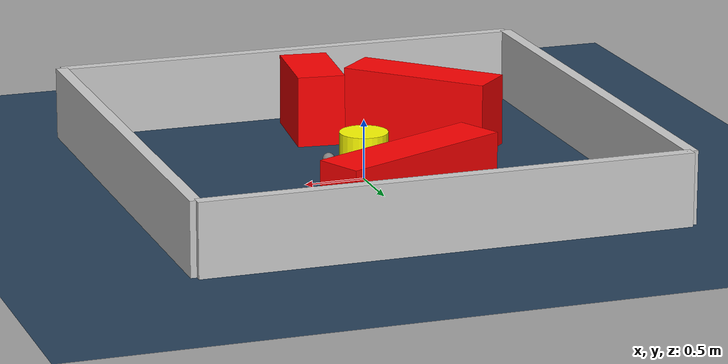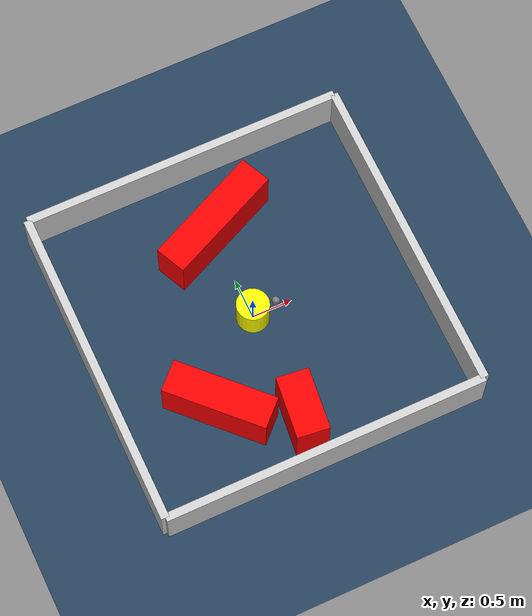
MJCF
<?xml version="1.0" ?>
<mujoco model="generated_environment">
  <option timestep="0.01" integrator="RK4" cone="elliptic"/>
  <default>
    <geom density="1"/>
  </default>
  <asset>
    <texture builtin="gradient" height="3072" rgb1="0.3 0.5 0.7" rgb2="0 0 0" type="skybox" width="512"/>
    <texture builtin="checker" height="300" mark="edge" markrgb="0.8 0.8 0.8" name="groundplane" rgb1="0.2 0.3 0.4" rgb2="0.1 0.2 0.3" type="2d" width="300"/>
    <material name="groundplane" reflectance="0.2" texrepeat="5 5" texture="groundplane" texuniform="true"/>
    <material name="robot" rgba="0.0 1.0 0.0 1"/>
  </asset>
  <worldbody>
    <light dir="0 0 -1" directional="true" pos="0 0 1.5"/>
    <geom condim="4" friction="1.0 0.005 0.001" material="groundplane" name="floor" size="0 0 0.05" type="plane"/>
    <body name="walls">
      <geom name="wall_1" condim="4" pos="-2.0 0.0 0.3" rgba="0.800000011920929 0.800000011920929 0.800000011920929 1.0" size="0.05 2.0 0.3" type="box"/>
      <geom name="wall_2" condim="4" pos="2.0 0.0 0.3" rgba="0.800000011920929 0.800000011920929 0.800000011920929 1.0" size="0.05 2.0 0.3" type="box"/>
      <geom name="wall_3" condim="4" pos="0.0 -2.0 0.3" rgba="0.800000011920929 0.800000011920929 0.800000011920929 1.0" size="2.0 0.05 0.3" type="box"/>
      <geom name="wall_4" condim="4" pos="0.0 2.0 0.3" rgba="0.800000011920929 0.800000011920929 0.800000011920929 1.0" size="2.0 0.05 0.3" type="box"/>
    </body>
    <body name="robot">
      <joint name="joint_x" type="slide" pos="0 0 0" axis="1 0 0"/>
      <joint name="joint_y" type="slide" pos="0 0 0" axis="0 1 0"/>
      <geom name="robot" type="sphere" pos="0.3 0.0 0.2" size="0.05" mass="5." friction="1.0 0.005 0.0001" condim="4" rgba="0.5 0.5 0.5 1.0"/>
      <site name="sensor_ball"/>
    </body>
    <body name="obstacle_movable_1">
      <geom name="obstacle_movable_1" condim="4" pos="0.0 0.0 0.2" euler="0 0 0.0" friction="1.0 0.005 0.001" rgba="1.0 1.0 0.0 1.0" size="0.2 0.2 0.0" type="cylinder" mass="0.1"/>
      <joint type="free"/>
    </body>
    <body name="obstacle_2_static">
      <geom name="obstacle_2_static" condim="4" pos="0.01922155088222066 1.157650192362288 0.3" euler="0 0 24.853709929376034" friction="1.0 0.005 0.001" rgba="1 0 0 1" size="0.7713654706691115 0.2 0.3" type="box"/>
    </body>
    <body name="obstacle_3_static">
      <geom name="obstacle_3_static" condim="4" pos="-0.023485336046897398 -1.4115081760374373 0.3" euler="0 0 263.5672102757301" friction="1.0 0.005 0.001" rgba="1 0 0 1" size="0.3836276086582053 0.2 0.3" type="box"/>
    </body>
    <body name="obstacle_4_static">
      <geom name="obstacle_4_static" condim="4" pos="-0.840999468598 -0.917384851737227 0.3" euler="0 0 314.2648350364908" friction="1.0 0.005 0.001" rgba="1 0 0 1" size="0.6419182447954953 0.2 0.3" type="box"/>
    </body>
  </worldbody>
  <actuator>
    <motor name="actuator_x" joint="joint_x" gear="1" ctrlrange="-1 1"/>
    <motor name="actuator_y" joint="joint_y" gear="1" ctrlrange="-1 1"/>
  </actuator>
</mujoco>
